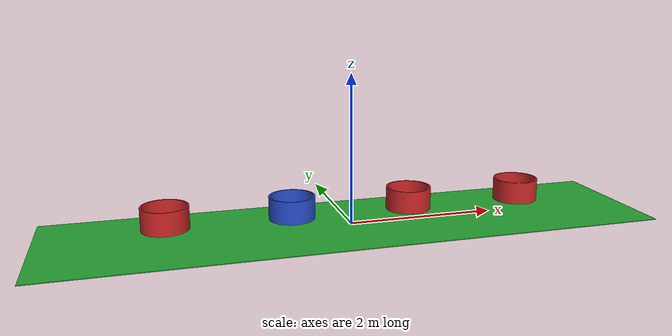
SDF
<?xml version="1.0" ?>

<sdf version="1.5">
  <model name="target_acquistion_area">
    <static>true</static>
    <link name="link">

      <visual name="target_acquistion_area">
        <cast_shadows>false</cast_shadows>
        <pose>0 0 .005 0 0 0</pose>
        <geometry>
          <box>
            <size>8 2 .01</size>
          </box>
        </geometry>
        <material>
          <script>
            <uri>file://materials/scripts/colors.material</uri>
            <name>SAUVC/Green</name>
          </script>
        </material>
      </visual>
    </link>

    <include>
      <uri>model://red_drum</uri>
      <pose>-2.4 0 0 0 0 0</pose>
    </include>

    <include>
      <uri>model://blue_drum</uri>
      <pose>-0.8 0 0 0 0 0</pose>
    </include>

    <include>
      <uri>model://red_drum</uri>
      <pose>0.8 0 0 0 0 0</pose>
    </include>

    <include>
      <uri>model://red_drum</uri>
      <pose>2.4 0 0 0 0 0</pose>
    </include>

  </model>
</sdf>

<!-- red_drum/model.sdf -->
<sdf version="1.5">
  <model name="red_drum">
    <static>true</static>
    <link name="link">

      <collision name="drum">
        <pose>0 0 0.15 0 0 0</pose>
        <geometry>
          <mesh>
            <scale>0.001 0.001 0.001</scale>
            <uri>model://red_drum/bucket.stl</uri>
          </mesh>
        </geometry>
      </collision>

      <visual name="drum">
        <cast_shadows>false</cast_shadows>
        <pose>0 0 0.15 0 0 0</pose>
        <geometry>
          <mesh>
            <scale>0.001 0.001 0.001</scale>
            <uri>model://red_drum/bucket.stl</uri>
          </mesh>
          <scale>0.001 0.001 0.001</scale>
        </geometry>
        <material>
          <script>
            <uri>file://media/materials/scripts/colors.material</uri>
            <name>SAUVC/Red</name>
          </script>
        </material>
      </visual>

    </link>
  </model>
</sdf>

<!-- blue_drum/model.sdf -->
<sdf version="1.5">
  <model name="blue_drum">
    <static>true</static>
    <link name="link">

      <collision name="drum">
        <pose>0 0 0.15 0 0 0</pose>
        <geometry>
          <mesh>
            <scale>0.001 0.001 0.001</scale>
            <uri>model://red_drum/bucket.stl</uri>
          </mesh>

        </geometry>
      </collision>

      <visual name="drum">
        <cast_shadows>false</cast_shadows>
        <pose>0 0 0.15 0 0 0</pose>
        <geometry>
          <mesh>
            <scale>0.001 0.001 0.001</scale>
            <uri>model://red_drum/bucket.stl</uri>
          </mesh>
        </geometry>
        <material>
          <script>
            <uri>file://media/materials/scripts/colors.material</uri>
            <name>SAUVC/Blue</name>
          </script>
        </material>
      </visual>

    </link>
  </model>
</sdf>
